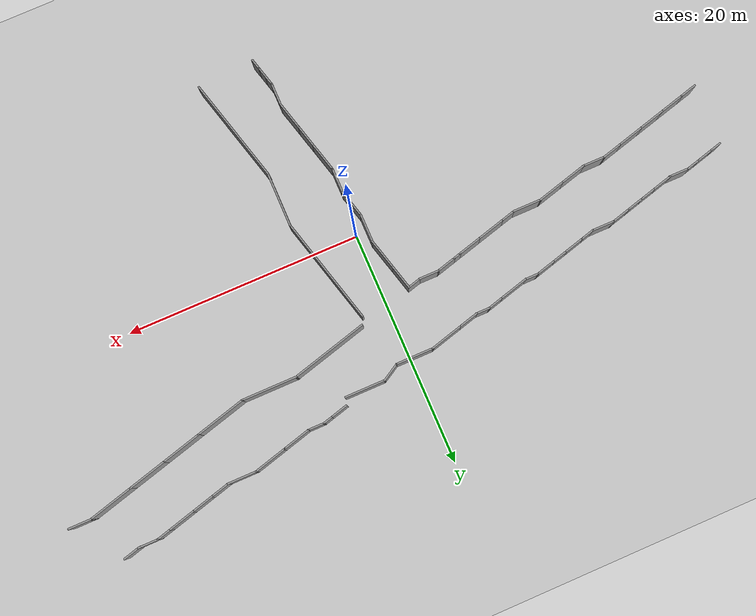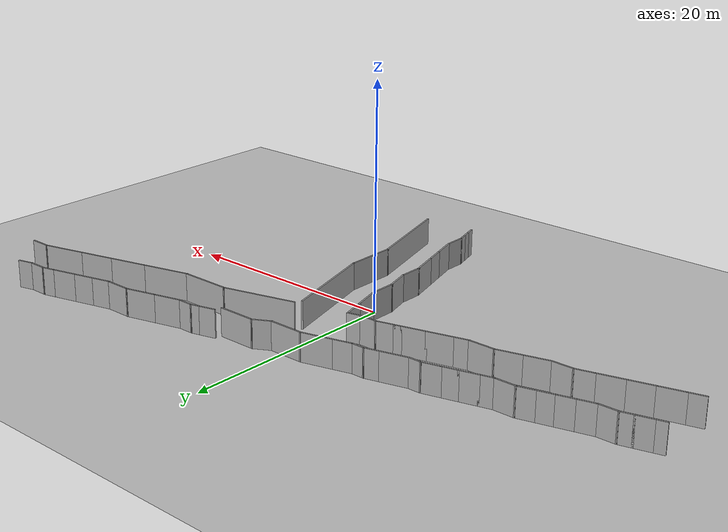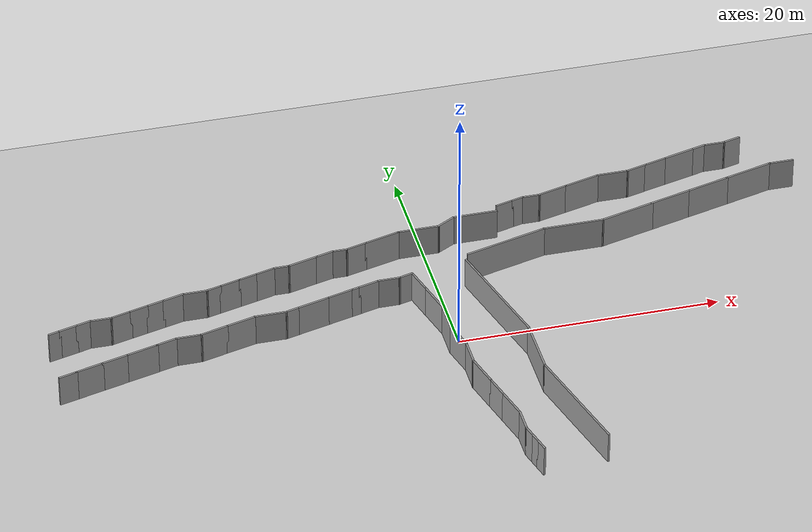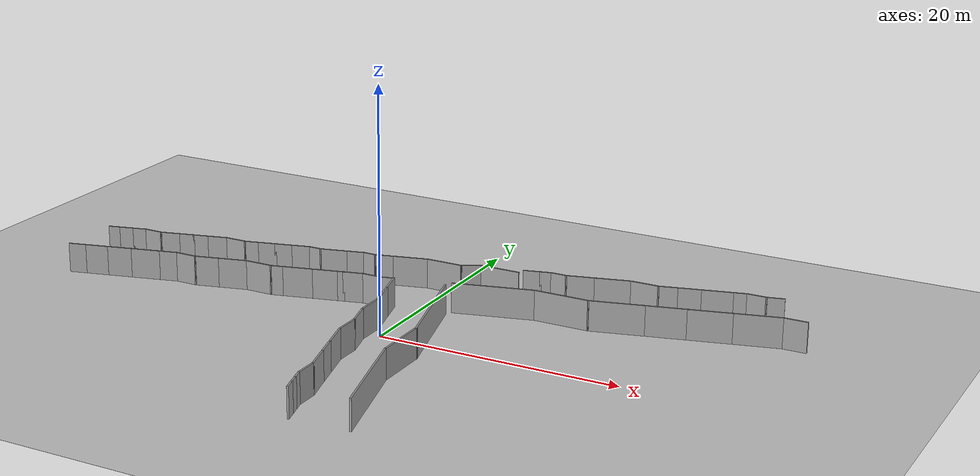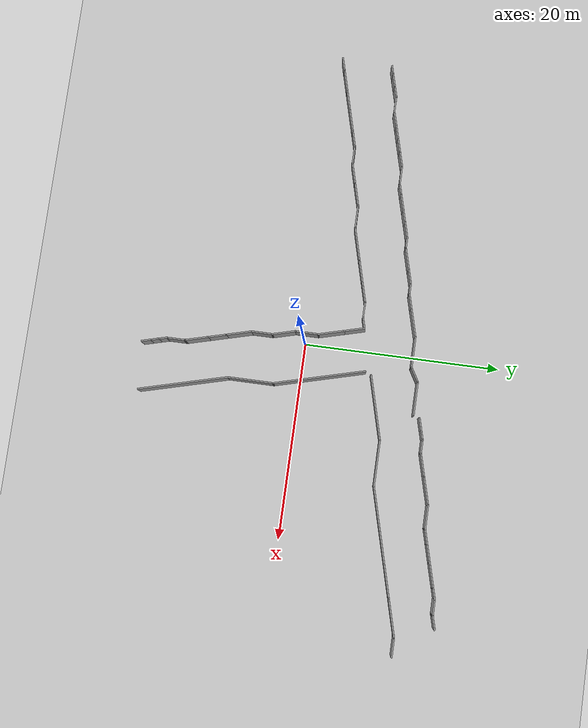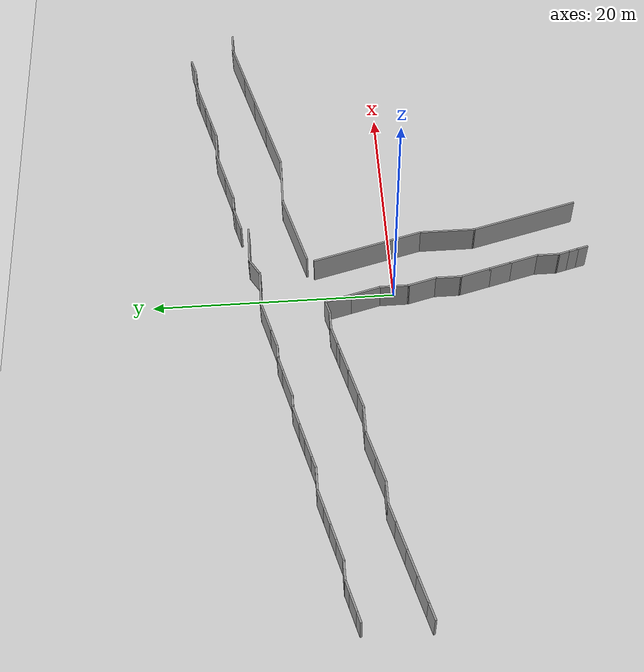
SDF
<sdf version="1.6">
 <world name="default">
  <light name="sun" type="directional">
   <pose>0 0 10 0 -0 0</pose>
   <diffuse>0.8 0.8 0.8 1</diffuse>
   <specular>0.2 0.2 0.2 1</specular>
   <attenuation>
    <range>1000</range>
    <constant>0.9</constant>
    <linear>0.01</linear>
    <quadratic>0.001</quadratic>
   </attenuation>
   <direction>-0.5 0.1 -0.9</direction>
  </light>
  <model name="ground_plane">
   <static>1</static>
   <link name="link">
    <collision name="collision">
     <geometry><plane><normal>0 0 1</normal><size>100 100</size></plane></geometry>
     <surface><friction><ode><mu>100</mu><mu2>50</mu2></ode></friction></surface>
    </collision>
    <visual name="visual">
     <cast_shadows>0</cast_shadows>
     <geometry><plane><normal>0 0 1</normal><size>100 100</size></plane></geometry>
     <material>
      <script><uri>file://media/materials/scripts/gazebo.material</uri><name>Gazebo/Grey</name></script>
     </material>
    </visual>
   </link>
  </model>
  <gravity>0 0 -9.8</gravity>
  <magnetic_field>6e-06 2.3e-05 -4.2e-05</magnetic_field>
  <atmosphere type="adiabatic"/>
  <physics name="default_physics" default="0" type="ode">
   <max_step_size>0.001</max_step_size>
   <real_time_factor>1</real_time_factor>
   <real_time_update_rate>1000</real_time_update_rate>
  </physics>
  <scene><ambient>0.4 0.4 0.4 1</ambient><background>0.7 0.7 0.7 1</background><shadows>1</shadows></scene>
  <spherical_coordinates>
   <surface_model>EARTH_WGS84</surface_model>
   <latitude_deg>0</latitude_deg>
   <longitude_deg>0</longitude_deg>
   <elevation>0</elevation>
   <heading_deg>0</heading_deg>
  </spherical_coordinates>
  <model name="cuit1">
   <pose>-1.69445 0.110036 0 0 -0 0</pose>
   <link name="Wall_10">
    <collision name="Wall_10_Collision">
     <geometry><box><size>2.5 0.15 2.5</size></box></geometry>
     <pose>0 0 1.25 0 -0 0</pose>
    </collision>
    <visual name="Wall_10_Visual">
     <pose>0 0 1.25 0 -0 0</pose>
     <geometry><box><size>2.5 0.15 2.5</size></box></geometry>
     <material>
      <script><uri>file://media/materials/scripts/gazebo.material</uri><name>Gazebo/Grey</name></script>
      <ambient>1 1 1 1</ambient>
     </material>
     <meta><layer>0</layer></meta>
    </visual>
    <pose>-11.7671 3.42948 0 0 -0 0</pose>
   </link>
   <link name="Wall_11">
    <collision name="Wall_11_Collision">
     <geometry><box><size>1.25 0.15 2.5</size></box></geometry>
     <pose>0 0 1.25 0 -0 0</pose>
    </collision>
    <visual name="Wall_11_Visual">
     <pose>0 0 1.25 0 -0 0</pose>
     <geometry><box><size>1.25 0.15 2.5</size></box></geometry>
     <material>
      <script><uri>file://media/materials/scripts/gazebo.material</uri><name>Gazebo/Grey</name></script>
      <ambient>1 1 1 1</ambient>
     </material>
     <meta><layer>0</layer></meta>
    </visual>
    <pose>-10.0609 3.57183 0 0 -0 0.261799</pose>
   </link>
   <link name="Wall_12">
    <collision name="Wall_12_Collision">
     <geometry><box><size>2.5 0.15 2.5</size></box></geometry>
     <pose>0 0 1.25 0 -0 0</pose>
    </collision>
    <visual name="Wall_12_Visual">
     <pose>0 0 1.25 0 -0 0</pose>
     <geometry><box><size>2.5 0.15 2.5</size></box></geometry>
     <material>
      <script><uri>file://media/materials/scripts/gazebo.material</uri><name>Gazebo/Grey</name></script>
      <ambient>1 1 1 1</ambient>
     </material>
     <meta><layer>0</layer></meta>
    </visual>
    <pose>-8.39465 4.01829 0 0 -0 0.261799</pose>
   </link>
   <link name="Wall_13">
    <collision name="Wall_13_Collision">
     <geometry><box><size>2.25 0.15 2.5</size></box></geometry>
     <pose>0 0 1.25 0 -0 0</pose>
    </collision>
    <visual name="Wall_13_Visual">
     <pose>0 0 1.25 0 -0 0</pose>
     <geometry><box><size>2.25 0.15 2.5</size></box></geometry>
     <material>
      <script><uri>file://media/materials/scripts/gazebo.material</uri><name>Gazebo/Grey</name></script>
      <ambient>1 1 1 1</ambient>
     </material>
     <meta><layer>0</layer></meta>
    </visual>
    <pose>-6.24547 4.59416 0 0 -0 0.261799</pose>
   </link>
   <link name="Wall_14">
    <collision name="Wall_14_Collision">
     <geometry><box><size>0.75 0.15 2.5</size></box></geometry>
     <pose>0 0 1.25 0 -0 0</pose>
    </collision>
    <visual name="Wall_14_Visual">
     <pose>0 0 1.25 0 -0 0</pose>
     <geometry><box><size>0.75 0.15 2.5</size></box></geometry>
     <material>
      <script><uri>file://media/materials/scripts/gazebo.material</uri><name>Gazebo/Grey</name></script>
      <ambient>1 1 1 1</ambient>
     </material>
     <meta><layer>0</layer></meta>
    </visual>
    <pose>-4.94147 4.94357 0 0 -0 0.261799</pose>
   </link>
   <link name="Wall_15">
    <collision name="Wall_15_Collision">
     <geometry><box><size>1.75 0.15 2.5</size></box></geometry>
     <pose>0 0 1.25 0 -0 0</pose>
    </collision>
    <visual name="Wall_15_Visual">
     <pose>0 0 1.25 0 -0 0</pose>
     <geometry><box><size>1.75 0.15 2.5</size></box></geometry>
     <material>
      <script><uri>file://media/materials/scripts/gazebo.material</uri><name>Gazebo/Grey</name></script>
      <ambient>1 1 1 1</ambient>
     </material>
     <meta><layer>0</layer></meta>
    </visual>
    <pose>-3.87895 5.22827 0 0 -0 0.261799</pose>
   </link>
   <link name="Wall_16">
    <collision name="Wall_16_Collision">
     <geometry><box><size>1.75 0.15 2.5</size></box></geometry>
     <pose>0 0 1.25 0 -0 0</pose>
    </collision>
    <visual name="Wall_16_Visual">
     <pose>0 0 1.25 0 -0 0</pose>
     <geometry><box><size>1.75 0.15 2.5</size></box></geometry>
     <material>
      <script><uri>file://media/materials/scripts/gazebo.material</uri><name>Gazebo/Grey</name></script>
      <ambient>1 1 1 1</ambient>
     </material>
     <meta><layer>0</layer></meta>
    </visual>
    <pose>-2.30621 5.43532 0 0 -0 0</pose>
   </link>
   <link name="Wall_17">
    <collision name="Wall_17_Collision">
     <geometry><box><size>1.25 0.15 2.5</size></box></geometry>
     <pose>0 0 1.25 0 -0 0</pose>
    </collision>
    <visual name="Wall_17_Visual">
     <pose>0 0 1.25 0 -0 0</pose>
     <geometry><box><size>1.25 0.15 2.5</size></box></geometry>
     <material>
      <script><uri>file://media/materials/scripts/gazebo.material</uri><name>Gazebo/Grey</name></script>
      <ambient>1 1 1 1</ambient>
     </material>
     <meta><layer>0</layer></meta>
    </visual>
    <pose>-0.974952 5.57768 0 0 -0 0.261799</pose>
   </link>
   <link name="Wall_18">
    <collision name="Wall_18_Collision">
     <geometry><box><size>2.25 0.15 2.5</size></box></geometry>
     <pose>0 0 1.25 0 -0 0</pose>
    </collision>
    <visual name="Wall_18_Visual">
     <pose>0 0 1.25 0 -0 0</pose>
     <geometry><box><size>2.25 0.15 2.5</size></box></geometry>
     <material>
      <script><uri>file://media/materials/scripts/gazebo.material</uri><name>Gazebo/Grey</name></script>
      <ambient>1 1 1 1</ambient>
     </material>
     <meta><layer>0</layer></meta>
    </visual>
    <pose>-0.171932 4.7058 0 0 -0 -1.309</pose>
   </link>
   <link name="Wall_19">
    <collision name="Wall_19_Collision">
     <geometry><box><size>2.75 0.15 2.5</size></box></geometry>
     <pose>0 0 1.25 0 -0 0</pose>
    </collision>
    <visual name="Wall_19_Visual">
     <pose>0 0 1.25 0 -0 0</pose>
     <geometry><box><size>2.75 0.15 2.5</size></box></geometry>
     <material>
      <script><uri>file://media/materials/scripts/gazebo.material</uri><name>Gazebo/Grey</name></script>
      <ambient>1 1 1 1</ambient>
     </material>
     <meta><layer>0</layer></meta>
    </visual>
    <pose>0.436292 2.43588 0 0 -0 -1.309</pose>
   </link>
   <link name="Wall_2">
    <collision name="Wall_2_Collision">
     <geometry><box><size>1.5 0.15 2.5</size></box></geometry>
     <pose>0 0 1.25 0 -0 0</pose>
    </collision>
    <visual name="Wall_2_Visual">
     <pose>0 0 1.25 0 -0 0</pose>
     <geometry><box><size>1.5 0.15 2.5</size></box></geometry>
     <material>
      <script><uri>file://media/materials/scripts/gazebo.material</uri><name>Gazebo/Grey</name></script>
      <ambient>1 1 1 1</ambient>
     </material>
     <meta><layer>0</layer></meta>
    </visual>
    <pose>-27.6148 -0.006345 0 0 -0 0.261799</pose>
   </link>
   <link name="Wall_20">
    <collision name="Wall_20_Collision">
     <geometry><box><size>2.5 0.15 2.5</size></box></geometry>
     <pose>0 0 1.25 0 -0 0</pose>
    </collision>
    <visual name="Wall_20_Visual">
     <pose>0 0 1.25 0 -0 0</pose>
     <geometry><box><size>2.5 0.15 2.5</size></box></geometry>
     <material>
      <script><uri>file://media/materials/scripts/gazebo.material</uri><name>Gazebo/Grey</name></script>
      <ambient>1 1 1 1</ambient>
     </material>
     <meta><layer>0</layer></meta>
    </visual>
    <pose>0.772757 0.005175 0 0 -0 -1.5708</pose>
   </link>
   <link name="Wall_21">
    <collision name="Wall_21_Collision">
     <geometry><box><size>2.5 0.15 2.5</size></box></geometry>
     <pose>0 0 1.25 0 -0 0</pose>
    </collision>
    <visual name="Wall_21_Visual">
     <pose>0 0 1.25 0 -0 0</pose>
     <geometry><box><size>2.5 0.15 2.5</size></box></geometry>
     <material>
      <script><uri>file://media/materials/scripts/gazebo.material</uri><name>Gazebo/Grey</name></script>
      <ambient>1 1 1 1</ambient>
     </material>
     <meta><layer>0</layer></meta>
    </visual>
    <pose>1.07687 -2.30479 0 0 -0 -1.309</pose>
   </link>
   <link name="Wall_22">
    <collision name="Wall_22_Collision">
     <geometry><box><size>2.25 0.15 2.5</size></box></geometry>
     <pose>0 0 1.25 0 -0 0</pose>
    </collision>
    <visual name="Wall_22_Visual">
     <pose>0 0 1.25 0 -0 0</pose>
     <geometry><box><size>2.25 0.15 2.5</size></box></geometry>
     <material>
      <script><uri>file://media/materials/scripts/gazebo.material</uri><name>Gazebo/Grey</name></script>
      <ambient>1 1 1 1</ambient>
     </material>
     <meta><layer>0</layer></meta>
    </visual>
    <pose>1.38098 -4.48975 0 0 -0 -1.5708</pose>
   </link>
   <link name="Wall_23">
    <collision name="Wall_23_Collision">
     <geometry><box><size>2.75 0.15 2.5</size></box></geometry>
     <pose>0 0 1.25 0 -0 0</pose>
    </collision>
    <visual name="Wall_23_Visual">
     <pose>0 0 1.25 0 -0 0</pose>
     <geometry><box><size>2.75 0.15 2.5</size></box></geometry>
     <material>
      <script><uri>file://media/materials/scripts/gazebo.material</uri><name>Gazebo/Grey</name></script>
      <ambient>1 1 1 1</ambient>
     </material>
     <meta><layer>0</layer></meta>
    </visual>
    <pose>1.71745 -6.79545 0 0 -0 -1.309</pose>
   </link>
   <link name="Wall_24">
    <collision name="Wall_24_Collision">
     <geometry><box><size>2 0.15 2.5</size></box></geometry>
     <pose>0 0 1.25 0 -0 0</pose>
    </collision>
    <visual name="Wall_24_Visual">
     <pose>0 0 1.25 0 -0 0</pose>
     <geometry><box><size>2 0.15 2.5</size></box></geometry>
     <material>
      <script><uri>file://media/materials/scripts/gazebo.material</uri><name>Gazebo/Grey</name></script>
      <ambient>1 1 1 1</ambient>
     </material>
     <meta><layer>0</layer></meta>
    </visual>
    <pose>2.29332 -8.94464 0 0 -0 -1.309</pose>
   </link>
   <link name="Wall_25">
    <collision name="Wall_25_Collision">
     <geometry><box><size>2.5 0.15 2.5</size></box></geometry>
     <pose>0 0 1.25 0 -0 0</pose>
    </collision>
    <visual name="Wall_25_Visual">
     <pose>0 0 1.25 0 -0 0</pose>
     <geometry><box><size>2.5 0.15 2.5</size></box></geometry>
     <material>
      <script><uri>file://media/materials/scripts/gazebo.material</uri><name>Gazebo/Grey</name></script>
      <ambient>1 1 1 1</ambient>
     </material>
     <meta><layer>0</layer></meta>
    </visual>
    <pose>2.83684 -10.9731 0 0 -0 -1.309</pose>
   </link>
   <link name="Wall_26">
    <collision name="Wall_26_Collision">
     <geometry><box><size>2 0.15 2.5</size></box></geometry>
     <pose>0 0 1.25 0 -0 0</pose>
    </collision>
    <visual name="Wall_26_Visual">
     <pose>0 0 1.25 0 -0 0</pose>
     <geometry><box><size>2 0.15 2.5</size></box></geometry>
     <material>
      <script><uri>file://media/materials/scripts/gazebo.material</uri><name>Gazebo/Grey</name></script>
      <ambient>1 1 1 1</ambient>
     </material>
     <meta><layer>0</layer></meta>
    </visual>
    <pose>3.14095 -13.033 0 0 -0 -1.5708</pose>
   </link>
   <link name="Wall_27">
    <collision name="Wall_27_Collision">
     <geometry><box><size>1 0.15 2.5</size></box></geometry>
     <pose>0 0 1.25 0 -0 0</pose>
    </collision>
    <visual name="Wall_27_Visual">
     <pose>0 0 1.25 0 -0 0</pose>
     <geometry><box><size>1 0.15 2.5</size></box></geometry>
     <material>
      <script><uri>file://media/materials/scripts/gazebo.material</uri><name>Gazebo/Grey</name></script>
      <ambient>1 1 1 1</ambient>
     </material>
     <meta><layer>0</layer></meta>
    </visual>
    <pose>3.25095 -14.3686 0 0 -0 -1.309</pose>
   </link>
   <link name="Wall_28">
    <collision name="Wall_28_Collision">
     <geometry><box><size>1 0.15 2.5</size></box></geometry>
     <pose>0 0 1.25 0 -0 0</pose>
    </collision>
    <visual name="Wall_28_Visual">
     <pose>0 0 1.25 0 -0 0</pose>
     <geometry><box><size>1 0.15 2.5</size></box></geometry>
     <material>
      <script><uri>file://media/materials/scripts/gazebo.material</uri><name>Gazebo/Grey</name></script>
      <ambient>1 1 1 1</ambient>
     </material>
     <meta><layer>0</layer></meta>
    </visual>
    <pose>3.47095 -15.1896 0 0 -0 -1.309</pose>
   </link>
   <link name="Wall_29">
    <collision name="Wall_29_Collision">
     <geometry><box><size>1 0.15 2.5</size></box></geometry>
     <pose>0 0 1.25 0 -0 0</pose>
    </collision>
    <visual name="Wall_29_Visual">
     <pose>0 0 1.25 0 -0 0</pose>
     <geometry><box><size>1 0.15 2.5</size></box></geometry>
     <material>
      <script><uri>file://media/materials/scripts/gazebo.material</uri><name>Gazebo/Grey</name></script>
      <ambient>1 1 1 1</ambient>
     </material>
     <meta><layer>0</layer></meta>
    </visual>
    <pose>3.69094 -16.0106 0 0 -0 -1.309</pose>
   </link>
   <link name="Wall_3">
    <collision name="Wall_3_Collision">
     <geometry><box><size>2.25 0.15 2.5</size></box></geometry>
     <pose>0 0 1.25 0 -0 0</pose>
    </collision>
    <visual name="Wall_3_Visual">
     <pose>0 0 1.25 0 -0 0</pose>
     <geometry><box><size>2.25 0.15 2.5</size></box></geometry>
     <material>
      <script><uri>file://media/materials/scripts/gazebo.material</uri><name>Gazebo/Grey</name></script>
      <ambient>1 1 1 1</ambient>
     </material>
     <meta><layer>0</layer></meta>
    </visual>
    <pose>-25.9486 0.440118 0 0 -0 0.261799</pose>
   </link>
   <link name="Wall_31">
    <collision name="Wall_31_Collision">
     <geometry><box><size>1 0.15 2.5</size></box></geometry>
     <pose>0 0 1.25 0 -0 0</pose>
    </collision>
    <visual name="Wall_31_Visual">
     <pose>0 0 1.25 0 -0 0</pose>
     <geometry><box><size>1 0.15 2.5</size></box></geometry>
     <material>
      <script><uri>file://media/materials/scripts/gazebo.material</uri><name>Gazebo/Grey</name></script>
      <ambient>1 1 1 1</ambient>
     </material>
     <meta><layer>0</layer></meta>
    </visual>
    <pose>-27.6717 5.09729 0 0 -0 0.261799</pose>
   </link>
   <link name="Wall_32">
    <collision name="Wall_32_Collision">
     <geometry><box><size>1.5 0.15 2.5</size></box></geometry>
     <pose>0 0 1.25 0 -0 0</pose>
    </collision>
    <visual name="Wall_32_Visual">
     <pose>0 0 1.25 0 -0 0</pose>
     <geometry><box><size>1.5 0.15 2.5</size></box></geometry>
     <material>
      <script><uri>file://media/materials/scripts/gazebo.material</uri><name>Gazebo/Grey</name></script>
      <ambient>1 1 1 1</ambient>
     </material>
     <meta><layer>0</layer></meta>
    </visual>
    <pose>-26.6092 5.38199 0 0 -0 0.261799</pose>
   </link>
   <link name="Wall_33">
    <collision name="Wall_33_Collision">
     <geometry><box><size>1.25 0.15 2.5</size></box></geometry>
     <pose>0 0 1.25 0 -0 0</pose>
    </collision>
    <visual name="Wall_33_Visual">
     <pose>0 0 1.25 0 -0 0</pose>
     <geometry><box><size>1.25 0.15 2.5</size></box></geometry>
     <material>
      <script><uri>file://media/materials/scripts/gazebo.material</uri><name>Gazebo/Grey</name></script>
      <ambient>1 1 1 1</ambient>
     </material>
     <meta><layer>0</layer></meta>
    </visual>
    <pose>-25.4259 5.69905 0 0 -0 0.261799</pose>
   </link>
   <link name="Wall_34">
    <collision name="Wall_34_Collision">
     <geometry><box><size>1.75 0.15 2.5</size></box></geometry>
     <pose>0 0 1.25 0 -0 0</pose>
    </collision>
    <visual name="Wall_34_Visual">
     <pose>0 0 1.25 0 -0 0</pose>
     <geometry><box><size>1.75 0.15 2.5</size></box></geometry>
     <material>
      <script><uri>file://media/materials/scripts/gazebo.material</uri><name>Gazebo/Grey</name></script>
      <ambient>1 1 1 1</ambient>
     </material>
     <meta><layer>0</layer></meta>
    </visual>
    <pose>-24.0947 5.8414 0 0 -0 0</pose>
   </link>
   <link name="Wall_35">
    <collision name="Wall_35_Collision">
     <geometry><box><size>1.75 0.15 2.5</size></box></geometry>
     <pose>0 0 1.25 0 -0 0</pose>
    </collision>
    <visual name="Wall_35_Visual">
     <pose>0 0 1.25 0 -0 0</pose>
     <geometry><box><size>1.75 0.15 2.5</size></box></geometry>
     <material>
      <script><uri>file://media/materials/scripts/gazebo.material</uri><name>Gazebo/Grey</name></script>
      <ambient>1 1 1 1</ambient>
     </material>
     <meta><layer>0</layer></meta>
    </visual>
    <pose>-22.5219 6.04845 0 0 -0 0.261799</pose>
   </link>
   <link name="Wall_36">
    <collision name="Wall_36_Collision">
     <geometry><box><size>1.5 0.15 2.5</size></box></geometry>
     <pose>0 0 1.25 0 -0 0</pose>
    </collision>
    <visual name="Wall_36_Visual">
     <pose>0 0 1.25 0 -0 0</pose>
     <geometry><box><size>1.5 0.15 2.5</size></box></geometry>
     <material>
      <script><uri>file://media/materials/scripts/gazebo.material</uri><name>Gazebo/Grey</name></script>
      <ambient>1 1 1 1</ambient>
     </material>
     <meta><layer>0</layer></meta>
    </visual>
    <pose>-21.0972 6.43021 0 0 -0 0.261799</pose>
   </link>
   <link name="Wall_37">
    <collision name="Wall_37_Collision">
     <geometry><box><size>1.5 0.15 2.5</size></box></geometry>
     <pose>0 0 1.25 0 -0 0</pose>
    </collision>
    <visual name="Wall_37_Visual">
     <pose>0 0 1.25 0 -0 0</pose>
     <geometry><box><size>1.5 0.15 2.5</size></box></geometry>
     <material>
      <script><uri>file://media/materials/scripts/gazebo.material</uri><name>Gazebo/Grey</name></script>
      <ambient>1 1 1 1</ambient>
     </material>
     <meta><layer>0</layer></meta>
    </visual>
    <pose>-19.7932 6.77961 0 0 -0 0.261799</pose>
   </link>
   <link name="Wall_38">
    <collision name="Wall_38_Collision">
     <geometry><box><size>1.75 0.15 2.5</size></box></geometry>
     <pose>0 0 1.25 0 -0 0</pose>
    </collision>
    <visual name="Wall_38_Visual">
     <pose>0 0 1.25 0 -0 0</pose>
     <geometry><box><size>1.75 0.15 2.5</size></box></geometry>
     <material>
      <script><uri>file://media/materials/scripts/gazebo.material</uri><name>Gazebo/Grey</name></script>
      <ambient>1 1 1 1</ambient>
     </material>
     <meta><layer>0</layer></meta>
    </visual>
    <pose>-18.3684 7.16137 0 0 -0 0.261799</pose>
   </link>
   <link name="Wall_39">
    <collision name="Wall_39_Collision">
     <geometry><box><size>2 0.15 2.5</size></box></geometry>
     <pose>0 0 1.25 0 -0 0</pose>
    </collision>
    <visual name="Wall_39_Visual">
     <pose>0 0 1.25 0 -0 0</pose>
     <geometry><box><size>2 0.15 2.5</size></box></geometry>
     <material>
      <script><uri>file://media/materials/scripts/gazebo.material</uri><name>Gazebo/Grey</name></script>
      <ambient>1 1 1 1</ambient>
     </material>
     <meta><layer>0</layer></meta>
    </visual>
    <pose>-16.6707 7.36843 0 0 -0 0</pose>
   </link>
   <link name="Wall_4">
    <collision name="Wall_4_Collision">
     <geometry><box><size>2.25 0.15 2.5</size></box></geometry>
     <pose>0 0 1.25 0 -0 0</pose>
    </collision>
    <visual name="Wall_4_Visual">
     <pose>0 0 1.25 0 -0 0</pose>
     <geometry><box><size>2.25 0.15 2.5</size></box></geometry>
     <material>
      <script><uri>file://media/materials/scripts/gazebo.material</uri><name>Gazebo/Grey</name></script>
      <ambient>1 1 1 1</ambient>
     </material>
     <meta><layer>0</layer></meta>
    </visual>
    <pose>-23.9201 0.983638 0 0 -0 0.261799</pose>
   </link>
   <link name="Wall_40">
    <collision name="Wall_40_Collision">
     <geometry><box><size>1.25 0.15 2.5</size></box></geometry>
     <pose>0 0 1.25 0 -0 0</pose>
    </collision>
    <visual name="Wall_40_Visual">
     <pose>0 0 1.25 0 -0 0</pose>
     <geometry><box><size>1.25 0.15 2.5</size></box></geometry>
     <material>
      <script><uri>file://media/materials/scripts/gazebo.material</uri><name>Gazebo/Grey</name></script>
      <ambient>1 1 1 1</ambient>
     </material>
     <meta><layer>0</layer></meta>
    </visual>
    <pose>-15.2144 7.51078 0 0 -0 0.261799</pose>
   </link>
   <link name="Wall_41">
    <collision name="Wall_41_Collision">
     <geometry><box><size>1.75 0.15 2.5</size></box></geometry>
     <pose>0 0 1.25 0 -0 0</pose>
    </collision>
    <visual name="Wall_41_Visual">
     <pose>0 0 1.25 0 -0 0</pose>
     <geometry><box><size>1.75 0.15 2.5</size></box></geometry>
     <material>
      <script><uri>file://media/materials/scripts/gazebo.material</uri><name>Gazebo/Grey</name></script>
      <ambient>1 1 1 1</ambient>
     </material>
     <meta><layer>0</layer></meta>
    </visual>
    <pose>-13.9104 7.86019 0 0 -0 0.261799</pose>
   </link>
   <link name="Wall_42">
    <collision name="Wall_42_Collision">
     <geometry><box><size>1.5 0.15 2.5</size></box></geometry>
     <pose>0 0 1.25 0 -0 0</pose>
    </collision>
    <visual name="Wall_42_Visual">
     <pose>0 0 1.25 0 -0 0</pose>
     <geometry><box><size>1.5 0.15 2.5</size></box></geometry>
     <material>
      <script><uri>file://media/materials/scripts/gazebo.material</uri><name>Gazebo/Grey</name></script>
      <ambient>1 1 1 1</ambient>
     </material>
     <meta><layer>0</layer></meta>
    </visual>
    <pose>-12.4857 8.24194 0 0 -0 0.261799</pose>
   </link>
   <link name="Wall_43">
    <collision name="Wall_43_Collision">
     <geometry><box><size>1.75 0.15 2.5</size></box></geometry>
     <pose>0 0 1.25 0 -0 0</pose>
    </collision>
    <visual name="Wall_43_Visual">
     <pose>0 0 1.25 0 -0 0</pose>
     <geometry><box><size>1.75 0.15 2.5</size></box></geometry>
     <material>
      <script><uri>file://media/materials/scripts/gazebo.material</uri><name>Gazebo/Grey</name></script>
      <ambient>1 1 1 1</ambient>
     </material>
     <meta><layer>0</layer></meta>
    </visual>
    <pose>-11.061 8.6237 0 0 -0 0.261799</pose>
   </link>
   <link name="Wall_44">
    <collision name="Wall_44_Collision">
     <geometry><box><size>1.25 0.15 2.5</size></box></geometry>
     <pose>0 0 1.25 0 -0 0</pose>
    </collision>
    <visual name="Wall_44_Visual">
     <pose>0 0 1.25 0 -0 0</pose>
     <geometry><box><size>1.25 0.15 2.5</size></box></geometry>
     <material>
      <script><uri>file://media/materials/scripts/gazebo.material</uri><name>Gazebo/Grey</name></script>
      <ambient>1 1 1 1</ambient>
     </material>
     <meta><layer>0</layer></meta>
    </visual>
    <pose>-9.73822 8.83076 0 0 -0 0</pose>
   </link>
   <link name="Wall_45">
    <collision name="Wall_45_Collision">
     <geometry><box><size>2.5 0.15 2.5</size></box></geometry>
     <pose>0 0 1.25 0 -0 0</pose>
    </collision>
    <visual name="Wall_45_Visual">
     <pose>0 0 1.25 0 -0 0</pose>
     <geometry><box><size>2.5 0.15 2.5</size></box></geometry>
     <material>
      <script><uri>file://media/materials/scripts/gazebo.material</uri><name>Gazebo/Grey</name></script>
      <ambient>1 1 1 1</ambient>
     </material>
     <meta><layer>0</layer></meta>
    </visual>
    <pose>-8.05326 9.13487 0 0 -0 0.261799</pose>
   </link>
   <link name="Wall_46">
    <collision name="Wall_46_Collision">
     <geometry><box><size>1.5 0.15 2.5</size></box></geometry>
     <pose>0 0 1.25 0 -0 0</pose>
    </collision>
    <visual name="Wall_46_Visual">
     <pose>0 0 1.25 0 -0 0</pose>
     <geometry><box><size>1.5 0.15 2.5</size></box></geometry>
     <material>
      <script><uri>file://media/materials/scripts/gazebo.material</uri><name>Gazebo/Grey</name></script>
      <ambient>1 1 1 1</ambient>
     </material>
     <meta><layer>0</layer></meta>
    </visual>
    <pose>-6.26629 9.61368 0 0 -0 0.261799</pose>
   </link>
   <link name="Wall_47">
    <collision name="Wall_47_Collision">
     <geometry><box><size>1.25 0.15 2.5</size></box></geometry>
     <pose>0 0 1.25 0 -0 0</pose>
    </collision>
    <visual name="Wall_47_Visual">
     <pose>0 0 1.25 0 -0 0</pose>
     <geometry><box><size>1.25 0.15 2.5</size></box></geometry>
     <material>
      <script><uri>file://media/materials/scripts/gazebo.material</uri><name>Gazebo/Grey</name></script>
      <ambient>1 1 1 1</ambient>
     </material>
     <meta><layer>0</layer></meta>
    </visual>
    <pose>-5.06429 9.78839 0 0 -0 0</pose>
   </link>
   <link name="Wall_48">
    <collision name="Wall_48_Collision">
     <geometry><box><size>1.75 0.15 2.5</size></box></geometry>
     <pose>0 0 1.25 0 -0 0</pose>
    </collision>
    <visual name="Wall_48_Visual">
     <pose>0 0 1.25 0 -0 0</pose>
     <geometry><box><size>1.75 0.15 2.5</size></box></geometry>
     <material>
      <script><uri>file://media/materials/scripts/gazebo.material</uri><name>Gazebo/Grey</name></script>
      <ambient>1 1 1 1</ambient>
     </material>
     <meta><layer>0</layer></meta>
    </visual>
    <pose>-3.74155 9.99544 0 0 -0 0.261799</pose>
   </link>
   <link name="Wall_49">
    <collision name="Wall_49_Collision">
     <geometry><box><size>3 0.15 2.5</size></box></geometry>
     <pose>0 0 1.25 0 -0 0</pose>
    </collision>
    <visual name="Wall_49_Visual">
     <pose>0 0 1.25 0 -0 0</pose>
     <geometry><box><size>3 0.15 2.5</size></box></geometry>
     <material>
      <script><uri>file://media/materials/scripts/gazebo.material</uri><name>Gazebo/Grey</name></script>
      <ambient>1 1 1 1</ambient>
     </material>
     <meta><layer>0</layer></meta>
    </visual>
    <pose>-1.59237 10.5713 0 0 -0 0.261799</pose>
   </link>
   <link name="Wall_5">
    <collision name="Wall_5_Collision">
     <geometry><box><size>2.5 0.15 2.5</size></box></geometry>
     <pose>0 0 1.25 0 -0 0</pose>
    </collision>
    <visual name="Wall_5_Visual">
     <pose>0 0 1.25 0 -0 0</pose>
     <geometry><box><size>2.5 0.15 2.5</size></box></geometry>
     <material>
      <script><uri>file://media/materials/scripts/gazebo.material</uri><name>Gazebo/Grey</name></script>
      <ambient>1 1 1 1</ambient>
     </material>
     <meta><layer>0</layer></meta>
    </visual>
    <pose>-21.7709 1.55951 0 0 -0 0.261799</pose>
   </link>
   <link name="Wall_50">
    <collision name="Wall_50_Collision">
     <geometry><box><size>3.25 0.15 2.5</size></box></geometry>
     <pose>0 0 1.25 0 -0 0</pose>
    </collision>
    <visual name="Wall_50_Visual">
     <pose>0 0 1.25 0 -0 0</pose>
     <geometry><box><size>3.25 0.15 2.5</size></box></geometry>
     <material>
      <script><uri>file://media/materials/scripts/gazebo.material</uri><name>Gazebo/Grey</name></script>
      <ambient>1 1 1 1</ambient>
     </material>
     <meta><layer>0</layer></meta>
    </visual>
    <pose>1.33408 10.9401 0 0 -0 0</pose>
   </link>
   <link name="Wall_51">
    <collision name="Wall_51_Collision">
     <geometry><box><size>1.75 0.15 2.5</size></box></geometry>
     <pose>0 0 1.25 0 -0 0</pose>
    </collision>
    <visual name="Wall_51_Visual">
     <pose>0 0 1.25 0 -0 0</pose>
     <geometry><box><size>1.75 0.15 2.5</size></box></geometry>
     <material>
      <script><uri>file://media/materials/scripts/gazebo.material</uri><name>Gazebo/Grey</name></script>
      <ambient>1 1 1 1</ambient>
     </material>
     <meta><layer>0</layer></meta>
    </visual>
    <pose>3.5769 11.3401 0 0 -0 0.523599</pose>
   </link>
   <link name="Wall_52">
    <collision name="Wall_52_Collision">
     <geometry><box><size>3.5 0.15 2.5</size></box></geometry>
     <pose>0 0 1.25 0 -0 0</pose>
    </collision>
    <visual name="Wall_52_Visual">
     <pose>0 0 1.25 0 -0 0</pose>
     <geometry><box><size>3.5 0.15 2.5</size></box></geometry>
     <material>
      <script><uri>file://media/materials/scripts/gazebo.material</uri><name>Gazebo/Grey</name></script>
      <ambient>1 1 1 1</ambient>
     </material>
     <meta><layer>0</layer></meta>
    </visual>
    <pose>5.94472 11.7401 0 0 -0 0</pose>
   </link>
   <link name="Wall_54">
    <collision name="Wall_54_Collision">
     <geometry><box><size>1.5 0.15 2.5</size></box></geometry>
     <pose>0 0 1.25 0 -0 0</pose>
    </collision>
    <visual name="Wall_54_Visual">
     <pose>0 0 1.25 0 -0 0</pose>
     <geometry><box><size>1.5 0.15 2.5</size></box></geometry>
     <material>
      <script><uri>file://media/materials/scripts/gazebo.material</uri><name>Gazebo/Grey</name></script>
      <ambient>1 1 1 1</ambient>
     </material>
     <meta><layer>0</layer></meta>
    </visual>
    <pose>8.50206 12.5453 0 0 -0 0.261799</pose>
   </link>
   <link name="Wall_55">
    <collision name="Wall_55_Collision">
     <geometry><box><size>1 0.15 2.5</size></box></geometry>
     <pose>0 0 1.25 0 -0 0</pose>
    </collision>
    <visual name="Wall_55_Visual">
     <pose>0 0 1.25 0 -0 0</pose>
     <geometry><box><size>1 0.15 2.5</size></box></geometry>
     <material>
      <script><uri>file://media/materials/scripts/gazebo.material</uri><name>Gazebo/Grey</name></script>
      <ambient>1 1 1 1</ambient>
     </material>
     <meta><layer>0</layer></meta>
    </visual>
    <pose>9.56458 12.83 0 0 -0 0.261799</pose>
   </link>
   <link name="Wall_56">
    <collision name="Wall_56_Collision">
     <geometry><box><size>1.5 0.15 2.5</size></box></geometry>
     <pose>0 0 1.25 0 -0 0</pose>
    </collision>
    <visual name="Wall_56_Visual">
     <pose>0 0 1.25 0 -0 0</pose>
     <geometry><box><size>1.5 0.15 2.5</size></box></geometry>
     <material>
      <script><uri>file://media/materials/scripts/gazebo.material</uri><name>Gazebo/Grey</name></script>
      <ambient>1 1 1 1</ambient>
     </material>
     <meta><layer>0</layer></meta>
    </visual>
    <pose>10.6501 12.94 0 0 -0 0</pose>
   </link>
   <link name="Wall_57">
    <collision name="Wall_57_Collision">
     <geometry><box><size>2.5 0.15 2.5</size></box></geometry>
     <pose>0 0 1.25 0 -0 0</pose>
    </collision>
    <visual name="Wall_57_Visual">
     <pose>0 0 1.25 0 -0 0</pose>
     <geometry><box><size>2.5 0.15 2.5</size></box></geometry>
     <material>
      <script><uri>file://media/materials/scripts/gazebo.material</uri><name>Gazebo/Grey</name></script>
      <ambient>1 1 1 1</ambient>
     </material>
     <meta><layer>0</layer></meta>
    </visual>
    <pose>12.4601 13.2442 0 0 -0 0.261799</pose>
   </link>
   <link name="Wall_58">
    <collision name="Wall_58_Collision">
     <geometry><box><size>3 0.15 2.5</size></box></geometry>
     <pose>0 0 1.25 0 -0 0</pose>
    </collision>
    <visual name="Wall_58_Visual">
     <pose>0 0 1.25 0 -0 0</pose>
     <geometry><box><size>3 0.15 2.5</size></box></geometry>
     <material>
      <script><uri>file://media/materials/scripts/gazebo.material</uri><name>Gazebo/Grey</name></script>
      <ambient>1 1 1 1</ambient>
     </material>
     <meta><layer>0</layer></meta>
    </visual>
    <pose>14.9715 13.9171 0 0 -0 0.261799</pose>
   </link>
   <link name="Wall_59">
    <collision name="Wall_59_Collision">
     <geometry><box><size>2.5 0.15 2.5</size></box></geometry>
     <pose>0 0 1.25 0 -0 0</pose>
    </collision>
    <visual name="Wall_59_Visual">
     <pose>0 0 1.25 0 -0 0</pose>
     <geometry><box><size>2.5 0.15 2.5</size></box></geometry>
     <material>
      <script><uri>file://media/materials/scripts/gazebo.material</uri><name>Gazebo/Grey</name></script>
      <ambient>1 1 1 1</ambient>
     </material>
     <meta><layer>0</layer></meta>
    </visual>
    <pose>17.5229 14.2859 0 0 -0 0</pose>
   </link>
   <link name="Wall_6">
    <collision name="Wall_6_Collision">
     <geometry><box><size>1.75 0.15 2.5</size></box></geometry>
     <pose>0 0 1.25 0 -0 0</pose>
    </collision>
    <visual name="Wall_6_Visual">
     <pose>0 0 1.25 0 -0 0</pose>
     <geometry><box><size>1.75 0.15 2.5</size></box></geometry>
     <material>
      <script><uri>file://media/materials/scripts/gazebo.material</uri><name>Gazebo/Grey</name></script>
      <ambient>1 1 1 1</ambient>
     </material>
     <meta><layer>0</layer></meta>
    </visual>
    <pose>-19.8632 2.07068 0 0 -0 0.261799</pose>
   </link>
   <link name="Wall_60">
    <collision name="Wall_60_Collision">
     <geometry><box><size>1.75 0.15 2.5</size></box></geometry>
     <pose>0 0 1.25 0 -0 0</pose>
    </collision>
    <visual name="Wall_60_Visual">
     <pose>0 0 1.25 0 -0 0</pose>
     <geometry><box><size>1.75 0.15 2.5</size></box></geometry>
     <material>
      <script><uri>file://media/materials/scripts/gazebo.material</uri><name>Gazebo/Grey</name></script>
      <ambient>1 1 1 1</ambient>
     </material>
     <meta><layer>0</layer></meta>
    </visual>
    <pose>19.4707 14.493 0 0 -0 0.261799</pose>
   </link>
   <link name="Wall_61">
    <collision name="Wall_61_Collision">
     <geometry><box><size>2 0.15 2.5</size></box></geometry>
     <pose>0 0 1.25 0 -0 0</pose>
    </collision>
    <visual name="Wall_61_Visual">
     <pose>0 0 1.25 0 -0 0</pose>
     <geometry><box><size>2 0.15 2.5</size></box></geometry>
     <material>
      <script><uri>file://media/materials/scripts/gazebo.material</uri><name>Gazebo/Grey</name></script>
      <ambient>1 1 1 1</ambient>
     </material>
     <meta><layer>0</layer></meta>
    </visual>
    <pose>21.1369 14.9394 0 0 -0 0.261799</pose>
   </link>
   <link name="Wall_62">
    <collision name="Wall_62_Collision">
     <geometry><box><size>2.5 0.15 2.5</size></box></geometry>
     <pose>0 0 1.25 0 -0 0</pose>
    </collision>
    <visual name="Wall_62_Visual">
     <pose>0 0 1.25 0 -0 0</pose>
     <geometry><box><size>2.5 0.15 2.5</size></box></geometry>
     <material>
      <script><uri>file://media/materials/scripts/gazebo.material</uri><name>Gazebo/Grey</name></script>
      <ambient>1 1 1 1</ambient>
     </material>
     <meta><layer>0</layer></meta>
    </visual>
    <pose>23.1653 15.4829 0 0 -0 0.261799</pose>
   </link>
   <link name="Wall_63">
    <collision name="Wall_63_Collision">
     <geometry><box><size>1.25 0.15 2.5</size></box></geometry>
     <pose>0 0 1.25 0 -0 0</pose>
    </collision>
    <visual name="Wall_63_Visual">
     <pose>0 0 1.25 0 -0 0</pose>
     <geometry><box><size>1.25 0.15 2.5</size></box></geometry>
     <material>
      <script><uri>file://media/materials/scripts/gazebo.material</uri><name>Gazebo/Grey</name></script>
      <ambient>1 1 1 1</ambient>
     </material>
     <meta><layer>0</layer></meta>
    </visual>
    <pose>24.8315 15.9294 0 0 -0 0.261799</pose>
   </link>
   <link name="Wall_64">
    <collision name="Wall_64_Collision">
     <geometry><box><size>1.75 0.15 2.5</size></box></geometry>
     <pose>0 0 1.25 0 -0 0</pose>
    </collision>
    <visual name="Wall_64_Visual">
     <pose>0 0 1.25 0 -0 0</pose>
     <geometry><box><size>1.75 0.15 2.5</size></box></geometry>
     <material>
      <script><uri>file://media/materials/scripts/gazebo.material</uri><name>Gazebo/Grey</name></script>
      <ambient>1 1 1 1</ambient>
     </material>
     <meta><layer>0</layer></meta>
    </visual>
    <pose>26.1628 16.0718 0 0 -0 0</pose>
   </link>
   <link name="Wall_65">
    <collision name="Wall_65_Collision">
     <geometry><box><size>1.5 0.15 2.5</size></box></geometry>
     <pose>0 0 1.25 0 -0 0</pose>
    </collision>
    <visual name="Wall_65_Visual">
     <pose>0 0 1.25 0 -0 0</pose>
     <geometry><box><size>1.5 0.15 2.5</size></box></geometry>
     <material>
      <script><uri>file://media/materials/scripts/gazebo.material</uri><name>Gazebo/Grey</name></script>
      <ambient>1 1 1 1</ambient>
     </material>
     <meta><layer>0</layer></meta>
    </visual>
    <pose>27.6148 16.2465 0 0 -0 0.261799</pose>
   </link>
   <link name="Wall_7">
    <collision name="Wall_7_Collision">
     <geometry><box><size>2 0.15 2.5</size></box></geometry>
     <pose>0 0 1.25 0 -0 0</pose>
    </collision>
    <visual name="Wall_7_Visual">
     <pose>0 0 1.25 0 -0 0</pose>
     <geometry><box><size>2 0.15 2.5</size></box></geometry>
     <material>
      <script><uri>file://media/materials/scripts/gazebo.material</uri><name>Gazebo/Grey</name></script>
      <ambient>1 1 1 1</ambient>
     </material>
     <meta><layer>0</layer></meta>
    </visual>
    <pose>-18.1655 2.27773 0 0 -0 0</pose>
   </link>
   <link name="Wall_8">
    <collision name="Wall_8_Collision">
     <geometry><box><size>2.25 0.15 2.5</size></box></geometry>
     <pose>0 0 1.25 0 -0 0</pose>
    </collision>
    <visual name="Wall_8_Visual">
     <pose>0 0 1.25 0 -0 0</pose>
     <geometry><box><size>2.25 0.15 2.5</size></box></geometry>
     <material>
      <script><uri>file://media/materials/scripts/gazebo.material</uri><name>Gazebo/Grey</name></script>
      <ambient>1 1 1 1</ambient>
     </material>
     <meta><layer>0</layer></meta>
    </visual>
    <pose>-16.2263 2.54949 0 0 -0 0.261799</pose>
   </link>
   <link name="Wall_9">
    <collision name="Wall_9_Collision">
     <geometry><box><size>2.5 0.15 2.5</size></box></geometry>
     <pose>0 0 1.25 0 -0 0</pose>
    </collision>
    <visual name="Wall_9_Visual">
     <pose>0 0 1.25 0 -0 0</pose>
     <geometry><box><size>2.5 0.15 2.5</size></box></geometry>
     <material>
      <script><uri>file://media/materials/scripts/gazebo.material</uri><name>Gazebo/Grey</name></script>
      <ambient>1 1 1 1</ambient>
     </material>
     <meta><layer>0</layer></meta>
    </visual>
    <pose>-14.0771 3.12536 0 0 -0 0.261799</pose>
   </link>
   <static>1</static>
  </model>
  <model name="cuit1_0">
   <pose>15.9456 -1.64003 0 0 -0 0</pose>
   <link name="Wall_81">
    <collision name="Wall_81_Collision">
     <geometry><box><size>9.5 0.15 2.5</size></box></geometry>
     <pose>0 0 1.25 0 -0 0</pose>
    </collision>
    <visual name="Wall_81_Visual">
     <pose>0 0 1.25 0 -0 0</pose>
     <geometry><box><size>9.5 0.15 2.5</size></box></geometry>
     <material>
      <script><uri>file://media/materials/scripts/gazebo.material</uri><name>Gazebo/Grey</name></script>
      <ambient>1 1 1 1</ambient>
     </material>
     <meta><layer>0</layer></meta>
    </visual>
    <pose>-12.5517 3.58982 0 0 -0 -1.309</pose>
   </link>
   <link name="Wall_82">
    <collision name="Wall_82_Collision">
     <geometry><box><size>4.75 0.15 2.5</size></box></geometry>
     <pose>0 0 1.25 0 -0 0</pose>
    </collision>
    <visual name="Wall_82_Visual">
     <pose>0 0 1.25 0 -0 0</pose>
     <geometry><box><size>4.75 0.15 2.5</size></box></geometry>
     <material>
      <script><uri>file://media/materials/scripts/gazebo.material</uri><name>Gazebo/Grey</name></script>
      <ambient>1 1 1 1</ambient>
     </material>
     <meta><layer>0</layer></meta>
    </visual>
    <pose>-11.3417 -3.22588 0 0 -0 -1.5708</pose>
   </link>
   <link name="Wall_83">
    <collision name="Wall_83_Collision">
     <geometry><box><size>9.25 0.15 2.5</size></box></geometry>
     <pose>0 0 1.25 0 -0 0</pose>
    </collision>
    <visual name="Wall_83_Visual">
     <pose>0 0 1.25 0 -0 0</pose>
     <geometry><box><size>9.25 0.15 2.5</size></box></geometry>
     <material>
      <script><uri>file://media/materials/scripts/gazebo.material</uri><name>Gazebo/Grey</name></script>
      <ambient>1 1 1 1</ambient>
     </material>
     <meta><layer>0</layer></meta>
    </visual>
    <pose>-10.1641 -9.92084 0 0 -0 -1.309</pose>
   </link>
   <link name="Wall_85">
    <collision name="Wall_85_Collision">
     <geometry><box><size>6.75 0.15 2.5</size></box></geometry>
     <pose>0 0 1.25 0 -0 0</pose>
    </collision>
    <visual name="Wall_85_Visual">
     <pose>0 0 1.25 0 -0 0</pose>
     <geometry><box><size>6.75 0.15 2.5</size></box></geometry>
     <material>
      <script><uri>file://media/materials/scripts/gazebo.material</uri><name>Gazebo/Grey</name></script>
      <ambient>1 1 1 1</ambient>
     </material>
     <meta><layer>0</layer></meta>
    </visual>
    <pose>-10.2513 9.6053 0 0 -0 0.261799</pose>
   </link>
   <link name="Wall_86">
    <collision name="Wall_86_Collision">
     <geometry><box><size>4.75 0.15 2.5</size></box></geometry>
     <pose>0 0 1.25 0 -0 0</pose>
    </collision>
    <visual name="Wall_86_Visual">
     <pose>0 0 1.25 0 -0 0</pose>
     <geometry><box><size>4.75 0.15 2.5</size></box></geometry>
     <material>
      <script><uri>file://media/materials/scripts/gazebo.material</uri><name>Gazebo/Grey</name></script>
      <ambient>1 1 1 1</ambient>
     </material>
     <meta><layer>0</layer></meta>
    </visual>
    <pose>-4.76375 10.4594 0 0 -0 0</pose>
   </link>
   <link name="Wall_87">
    <collision name="Wall_87_Collision">
     <geometry><box><size>4.5 0.15 2.5</size></box></geometry>
     <pose>0 0 1.25 0 -0 0</pose>
    </collision>
    <visual name="Wall_87_Visual">
     <pose>0 0 1.25 0 -0 0</pose>
     <geometry><box><size>4.5 0.15 2.5</size></box></geometry>
     <material>
      <script><uri>file://media/materials/scripts/gazebo.material</uri><name>Gazebo/Grey</name></script>
      <ambient>1 1 1 1</ambient>
     </material>
     <meta><layer>0</layer></meta>
    </visual>
    <pose>-0.362857 11.0223 0 0 -0 0.261799</pose>
   </link>
   <link name="Wall_88">
    <collision name="Wall_88_Collision">
     <geometry><box><size>3.5 0.15 2.5</size></box></geometry>
     <pose>0 0 1.25 0 -0 0</pose>
    </collision>
    <visual name="Wall_88_Visual">
     <pose>0 0 1.25 0 -0 0</pose>
     <geometry><box><size>3.5 0.15 2.5</size></box></geometry>
     <material>
      <script><uri>file://media/materials/scripts/gazebo.material</uri><name>Gazebo/Grey</name></script>
      <ambient>1 1 1 1</ambient>
     </material>
     <meta><layer>0</layer></meta>
    </visual>
    <pose>3.35596 12.0188 0 0 -0 0.261799</pose>
   </link>
   <link name="Wall_89">
    <collision name="Wall_89_Collision">
     <geometry><box><size>3.5 0.15 2.5</size></box></geometry>
     <pose>0 0 1.25 0 -0 0</pose>
    </collision>
    <visual name="Wall_89_Visual">
     <pose>0 0 1.25 0 -0 0</pose>
     <geometry><box><size>3.5 0.15 2.5</size></box></geometry>
     <material>
      <script><uri>file://media/materials/scripts/gazebo.material</uri><name>Gazebo/Grey</name></script>
      <ambient>1 1 1 1</ambient>
     </material>
     <meta><layer>0</layer></meta>
    </visual>
    <pose>6.59181 12.8858 0 0 -0 0.261799</pose>
   </link>
   <link name="Wall_90">
    <collision name="Wall_90_Collision">
     <geometry><box><size>4 0.15 2.5</size></box></geometry>
     <pose>0 0 1.25 0 -0 0</pose>
    </collision>
    <visual name="Wall_90_Visual">
     <pose>0 0 1.25 0 -0 0</pose>
     <geometry><box><size>4 0.15 2.5</size></box></geometry>
     <material>
      <script><uri>file://media/materials/scripts/gazebo.material</uri><name>Gazebo/Grey</name></script>
      <ambient>1 1 1 1</ambient>
     </material>
     <meta><layer>0</layer></meta>
    </visual>
    <pose>10.0691 13.8176 0 0 -0 0.261799</pose>
   </link>
   <link name="Wall_91">
    <collision name="Wall_91_Collision">
     <geometry><box><size>2 0.15 2.5</size></box></geometry>
     <pose>0 0 1.25 0 -0 0</pose>
    </collision>
    <visual name="Wall_91_Visual">
     <pose>0 0 1.25 0 -0 0</pose>
     <geometry><box><size>2 0.15 2.5</size></box></geometry>
     <material>
      <script><uri>file://media/materials/scripts/gazebo.material</uri><name>Gazebo/Grey</name></script>
      <ambient>1 1 1 1</ambient>
     </material>
     <meta><layer>0</layer></meta>
    </visual>
    <pose>12.8535 14.3158 0 0 -0 0</pose>
   </link>
   <static>1</static>
  </model>
 </world>
</sdf>
